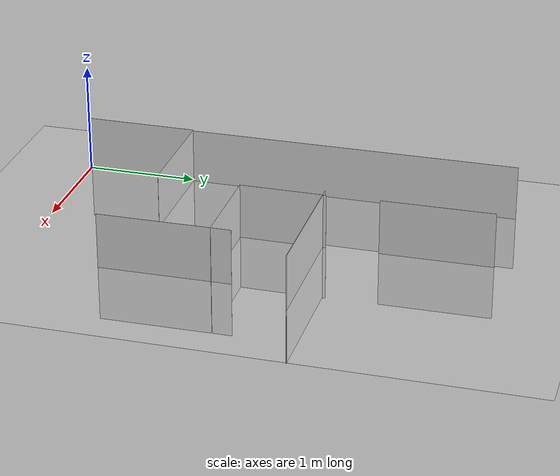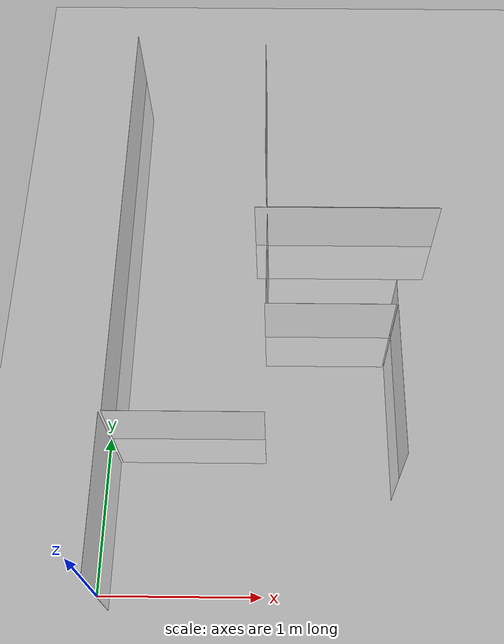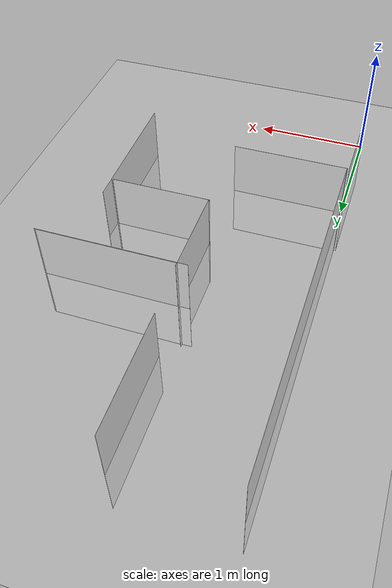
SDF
<sdf version="1.7">
 <world name="default">
  <model name="ground_plane">
   <static>1</static>
   <link name="link">
    <collision name="collision">
     <geometry><plane><normal>0 0 1</normal><size>100 100</size></plane></geometry>
     <surface><friction><ode><mu>100</mu><mu2>50</mu2></ode></friction></surface>
    </collision>
    <visual name="visual">
     <cast_shadows>0</cast_shadows>
     <geometry><plane><normal>0 0 1</normal><size>100 100</size></plane></geometry>
     <material>
      <script><uri>file://media/materials/scripts/gazebo.material</uri><name>Gazebo/Grey</name></script>
     </material>
    </visual>
   </link>
  </model>
  <model name="wall_19">
   <static>1</static>
   <link name="link">
    <collision name="collision"><geometry><box><size>1.27 0.001 1</size></box></geometry></collision>
    <visual name="visual">
     <geometry><box><size>1.27 0.001 1</size></box></geometry>
     <material>
      <script><name>Gazebo/White</name><uri>file://media/materials/scripts/gazebo.material</uri></script>
     </material>
    </visual>
   </link>
   <pose>1.5494 2.48921 0 0 -0 0</pose>
  </model>
  <model name="wall_22">
   <static>1</static>
   <link name="link">
    <collision name="collision"><geometry><box><size>0.1778 0.001 1</size></box></geometry></collision>
    <visual name="visual">
     <geometry><box><size>0.1778 0.001 1</size></box></geometry>
     <material>
      <script><name>Gazebo/White</name><uri>file://media/materials/scripts/gazebo.material</uri></script>
     </material>
    </visual>
   </link>
   <pose>1.8542 1.8415 0 0 0 -1.5708</pose>
  </model>
  <model name="wall_0">
   <link name="link">
    <inertial>
     <mass>1</mass>
     <inertia><ixx>1</ixx><ixy>0</ixy><ixz>0</ixz><iyy>1</iyy><iyz>0</iyz><izz>1</izz></inertia>
    </inertial>
    <visual name="visual">
     <geometry><box><size>3 0.001 1</size></box></geometry>
     <material>
      <script><name>Gazebo/White</name><uri>file://media/materials/scripts/gazebo.material</uri></script>
      <shader type="pixel"><normal_map>__default__</normal_map></shader>
      <ambient>1 1 1 1</ambient>
      <diffuse>1 1 1 1</diffuse>
      <specular>0 0 0 1</specular>
      <emissive>0 0 0 1</emissive>
     </material>
    </visual>
    <collision name="collision">
     <geometry><box><size>3 0.001 1</size></box></geometry>
     <surface>
      <friction>
       <ode><mu>1</mu><mu2>1</mu2><fdir1>0 0 0</fdir1><slip1>0</slip1><slip2>0</slip2></ode>
       <torsional>
        <coefficient>1</coefficient>
        <patch_radius>0</patch_radius>
        <surface_radius>0</surface_radius>
        <use_patch_radius>1</use_patch_radius>
        <ode><slip>0</slip></ode>
       </torsional>
      </friction>
      <bounce><restitution_coefficient>0</restitution_coefficient><threshold>1e+06</threshold></bounce>
      <contact>
       <collide_without_contact>0</collide_without_contact>
       <collide_without_contact_bitmask>1</collide_without_contact_bitmask>
       <collide_bitmask>1</collide_bitmask>
       <ode>
        <soft_cfm>0</soft_cfm>
        <soft_erp>0.2</soft_erp>
        <kp>1e+13</kp>
        <kd>1</kd>
        <max_vel>0.01</max_vel>
        <min_depth>0</min_depth>
       </ode>
       <bullet>
        <split_impulse>1</split_impulse>
        <split_impulse_penetration_threshold>-0.01</split_impulse_penetration_threshold>
        <soft_cfm>0</soft_cfm>
        <soft_erp>0.2</soft_erp>
        <kp>1e+13</kp>
        <kd>1</kd>
       </bullet>
      </contact>
     </surface>
    </collision>
   </link>
   <static>1</static>
   <pose>0.009337 2.51002 0 0 -0 1.5708</pose>
  </model>
  <model name="wall_24_clone_0_clone_clone_1">
   <link name="link">
    <inertial>
     <mass>1</mass>
     <inertia><ixx>1</ixx><ixy>0</ixy><ixz>0</ixz><iyy>1</iyy><iyz>0</iyz><izz>1</izz></inertia>
    </inertial>
    <visual name="visual">
     <geometry><box><size>1 0.001 1</size></box></geometry>
     <material>
      <script><name>Gazebo/White</name><uri>file://media/materials/scripts/gazebo.material</uri></script>
      <shader type="pixel"><normal_map>__default__</normal_map></shader>
      <ambient>1 1 1 1</ambient>
      <diffuse>1 1 1 1</diffuse>
      <specular>0 0 0 1</specular>
      <emissive>0 0 0 1</emissive>
     </material>
    </visual>
    <collision name="collision">
     <geometry><box><size>1 0.001 1</size></box></geometry>
     <surface>
      <friction>
       <ode><mu>1</mu><mu2>1</mu2><fdir1>0 0 0</fdir1><slip1>0</slip1><slip2>0</slip2></ode>
       <torsional>
        <coefficient>1</coefficient>
        <patch_radius>0</patch_radius>
        <surface_radius>0</surface_radius>
        <use_patch_radius>1</use_patch_radius>
        <ode><slip>0</slip></ode>
       </torsional>
      </friction>
      <bounce><restitution_coefficient>0</restitution_coefficient><threshold>1e+06</threshold></bounce>
      <contact>
       <collide_without_contact>0</collide_without_contact>
       <collide_without_contact_bitmask>1</collide_without_contact_bitmask>
       <collide_bitmask>1</collide_bitmask>
       <ode>
        <soft_cfm>0</soft_cfm>
        <soft_erp>0.2</soft_erp>
        <kp>1e+13</kp>
        <kd>1</kd>
        <max_vel>0.01</max_vel>
        <min_depth>0</min_depth>
       </ode>
       <bullet>
        <split_impulse>1</split_impulse>
        <split_impulse_penetration_threshold>-0.01</split_impulse_penetration_threshold>
        <soft_cfm>0</soft_cfm>
        <soft_erp>0.2</soft_erp>
        <kp>1e+13</kp>
        <kd>1</kd>
       </bullet>
      </contact>
     </surface>
    </collision>
   </link>
   <static>1</static>
   <pose>-0.010166 0.501025 0 0 -0 1.56928</pose>
  </model>
  <model name="wall_24_clone_0_clone_0">
   <link name="link">
    <inertial>
     <mass>1</mass>
     <inertia><ixx>1</ixx><ixy>0</ixy><ixz>0</ixz><iyy>1</iyy><iyz>0</iyz><izz>1</izz></inertia>
    </inertial>
    <visual name="visual">
     <geometry><box><size>1 0.001 1</size></box></geometry>
     <material>
      <script><name>Gazebo/White</name><uri>file://media/materials/scripts/gazebo.material</uri></script>
      <shader type="pixel"><normal_map>__default__</normal_map></shader>
      <ambient>1 1 1 1</ambient>
      <diffuse>1 1 1 1</diffuse>
      <specular>0 0 0 1</specular>
      <emissive>0 0 0 1</emissive>
     </material>
    </visual>
    <collision name="collision">
     <geometry><box><size>1 0.001 1</size></box></geometry>
     <surface>
      <friction>
       <ode><mu>1</mu><mu2>1</mu2><fdir1>0 0 0</fdir1><slip1>0</slip1><slip2>0</slip2></ode>
       <torsional>
        <coefficient>1</coefficient>
        <patch_radius>0</patch_radius>
        <surface_radius>0</surface_radius>
        <use_patch_radius>1</use_patch_radius>
        <ode><slip>0</slip></ode>
       </torsional>
      </friction>
      <bounce><restitution_coefficient>0</restitution_coefficient><threshold>1e+06</threshold></bounce>
      <contact>
       <collide_without_contact>0</collide_without_contact>
       <collide_without_contact_bitmask>1</collide_without_contact_bitmask>
       <collide_bitmask>1</collide_bitmask>
       <ode>
        <soft_cfm>0</soft_cfm>
        <soft_erp>0.2</soft_erp>
        <kp>1e+13</kp>
        <kd>1</kd>
        <max_vel>0.01</max_vel>
        <min_depth>0</min_depth>
       </ode>
       <bullet>
        <split_impulse>1</split_impulse>
        <split_impulse_penetration_threshold>-0.01</split_impulse_penetration_threshold>
        <soft_cfm>0</soft_cfm>
        <soft_erp>0.2</soft_erp>
        <kp>1e+13</kp>
        <kd>1</kd>
       </bullet>
      </contact>
     </surface>
    </collision>
   </link>
   <static>1</static>
   <pose>0.975549 3.48714 0 0 -0 1.58109</pose>
  </model>
  <model name="wall_24_clone_0_clone_1">
   <link name="link">
    <inertial>
     <mass>1</mass>
     <inertia><ixx>1</ixx><ixy>0</ixy><ixz>0</ixz><iyy>1</iyy><iyz>0</iyz><izz>1</izz></inertia>
    </inertial>
    <visual name="visual">
     <geometry><box><size>1 0.001 1</size></box></geometry>
     <material>
      <script><name>Gazebo/White</name><uri>file://media/materials/scripts/gazebo.material</uri></script>
      <shader type="pixel"><normal_map>__default__</normal_map></shader>
      <ambient>1 1 1 1</ambient>
      <diffuse>1 1 1 1</diffuse>
      <specular>0 0 0 1</specular>
      <emissive>0 0 0 1</emissive>
     </material>
    </visual>
    <collision name="collision">
     <geometry><box><size>1 0.001 1</size></box></geometry>
     <surface>
      <friction>
       <ode><mu>1</mu><mu2>1</mu2><fdir1>0 0 0</fdir1><slip1>0</slip1><slip2>0</slip2></ode>
       <torsional>
        <coefficient>1</coefficient>
        <patch_radius>0</patch_radius>
        <surface_radius>0</surface_radius>
        <use_patch_radius>1</use_patch_radius>
        <ode><slip>0</slip></ode>
       </torsional>
      </friction>
      <bounce><restitution_coefficient>0</restitution_coefficient><threshold>1e+06</threshold></bounce>
      <contact>
       <collide_without_contact>0</collide_without_contact>
       <collide_without_contact_bitmask>1</collide_without_contact_bitmask>
       <collide_bitmask>1</collide_bitmask>
       <ode>
        <soft_cfm>0</soft_cfm>
        <soft_erp>0.2</soft_erp>
        <kp>1e+13</kp>
        <kd>1</kd>
        <max_vel>0.01</max_vel>
        <min_depth>0</min_depth>
       </ode>
       <bullet>
        <split_impulse>1</split_impulse>
        <split_impulse_penetration_threshold>-0.01</split_impulse_penetration_threshold>
        <soft_cfm>0</soft_cfm>
        <soft_erp>0.2</soft_erp>
        <kp>1e+13</kp>
        <kd>1</kd>
       </bullet>
      </contact>
     </surface>
    </collision>
   </link>
   <static>1</static>
   <pose>0.504864 1.00782 0 0 -0 0</pose>
  </model>
  <model name="wall_24_clone_0_clone_0_clone">
   <link name="link">
    <inertial>
     <mass>1</mass>
     <inertia><ixx>1</ixx><ixy>0</ixy><ixz>0</ixz><iyy>1</iyy><iyz>0</iyz><izz>1</izz></inertia>
    </inertial>
    <visual name="visual">
     <geometry><box><size>1 0.001 1</size></box></geometry>
     <material>
      <script><name>Gazebo/White</name><uri>file://media/materials/scripts/gazebo.material</uri></script>
      <shader type="pixel"><normal_map>__default__</normal_map></shader>
      <ambient>1 1 1 1</ambient>
      <diffuse>1 1 1 1</diffuse>
      <specular>0 0 0 1</specular>
      <emissive>0 0 0 1</emissive>
     </material>
    </visual>
    <collision name="collision">
     <geometry><box><size>1 0.001 1</size></box></geometry>
     <surface>
      <friction>
       <ode><mu>1</mu><mu2>1</mu2><fdir1>0 0 0</fdir1><slip1>0</slip1><slip2>0</slip2></ode>
       <torsional>
        <coefficient>1</coefficient>
        <patch_radius>0</patch_radius>
        <surface_radius>0</surface_radius>
        <use_patch_radius>1</use_patch_radius>
        <ode><slip>0</slip></ode>
       </torsional>
      </friction>
      <bounce><restitution_coefficient>0</restitution_coefficient><threshold>1e+06</threshold></bounce>
      <contact>
       <collide_without_contact>0</collide_without_contact>
       <collide_without_contact_bitmask>1</collide_without_contact_bitmask>
       <collide_bitmask>1</collide_bitmask>
       <ode>
        <soft_cfm>0</soft_cfm>
        <soft_erp>0.2</soft_erp>
        <kp>1e+13</kp>
        <kd>1</kd>
        <max_vel>0.01</max_vel>
        <min_depth>0</min_depth>
       </ode>
       <bullet>
        <split_impulse>1</split_impulse>
        <split_impulse_penetration_threshold>-0.01</split_impulse_penetration_threshold>
        <soft_cfm>0</soft_cfm>
        <soft_erp>0.2</soft_erp>
        <kp>1e+13</kp>
        <kd>1</kd>
       </bullet>
      </contact>
     </surface>
    </collision>
   </link>
   <static>1</static>
   <pose>1.86089 1.2503 0 0 -0 1.58109</pose>
  </model>
  <model name="wall_23">
   <link name="link">
    <inertial>
     <mass>1</mass>
     <inertia><ixx>1</ixx><ixy>0</ixy><ixz>0</ixz><iyy>1</iyy><iyz>0</iyz><izz>1</izz></inertia>
    </inertial>
    <visual name="visual">
     <geometry><box><size>0.85 0.001 1</size></box></geometry>
     <material>
      <script><name>Gazebo/White</name><uri>file://media/materials/scripts/gazebo.material</uri></script>
      <shader type="pixel"><normal_map>__default__</normal_map></shader>
      <ambient>1 1 1 1</ambient>
      <diffuse>1 1 1 1</diffuse>
      <specular>0 0 0 1</specular>
      <emissive>0 0 0 1</emissive>
     </material>
    </visual>
    <collision name="collision">
     <geometry><box><size>0.85 0.001 1</size></box></geometry>
     <surface>
      <friction>
       <ode><mu>1</mu><mu2>1</mu2><fdir1>0 0 0</fdir1><slip1>0</slip1><slip2>0</slip2></ode>
       <torsional>
        <coefficient>1</coefficient>
        <patch_radius>0</patch_radius>
        <surface_radius>0</surface_radius>
        <use_patch_radius>1</use_patch_radius>
        <ode><slip>0</slip></ode>
       </torsional>
      </friction>
      <bounce><restitution_coefficient>0</restitution_coefficient><threshold>1e+06</threshold></bounce>
      <contact>
       <collide_without_contact>0</collide_without_contact>
       <collide_without_contact_bitmask>1</collide_without_contact_bitmask>
       <collide_bitmask>1</collide_bitmask>
       <ode>
        <soft_cfm>0</soft_cfm>
        <soft_erp>0.2</soft_erp>
        <kp>1e+13</kp>
        <kd>1</kd>
        <max_vel>0.01</max_vel>
        <min_depth>0</min_depth>
       </ode>
       <bullet>
        <split_impulse>1</split_impulse>
        <split_impulse_penetration_threshold>-0.01</split_impulse_penetration_threshold>
        <soft_cfm>0</soft_cfm>
        <soft_erp>0.2</soft_erp>
        <kp>1e+13</kp>
        <kd>1</kd>
       </bullet>
      </contact>
     </surface>
    </collision>
   </link>
   <static>1</static>
   <pose>1.41878 1.7526 0 0 0 -3.14159</pose>
  </model>
  <model name="wall_23_clone">
   <link name="link">
    <inertial>
     <mass>1</mass>
     <inertia><ixx>1</ixx><ixy>0</ixy><ixz>0</ixz><iyy>1</iyy><iyz>0</iyz><izz>1</izz></inertia>
    </inertial>
    <visual name="visual">
     <geometry><box><size>1.17 0.001 1</size></box></geometry>
     <material>
      <script><name>Gazebo/White</name><uri>file://media/materials/scripts/gazebo.material</uri></script>
      <shader type="pixel"><normal_map>__default__</normal_map></shader>
      <ambient>1 1 1 1</ambient>
      <diffuse>1 1 1 1</diffuse>
      <specular>0 0 0 1</specular>
      <emissive>0 0 0 1</emissive>
     </material>
    </visual>
    <collision name="collision">
     <geometry><box><size>1.17 0.001 1</size></box></geometry>
     <surface>
      <friction>
       <ode><mu>1</mu><mu2>1</mu2><fdir1>0 0 0</fdir1><slip1>0</slip1><slip2>0</slip2></ode>
       <torsional>
        <coefficient>1</coefficient>
        <patch_radius>0</patch_radius>
        <surface_radius>0</surface_radius>
        <use_patch_radius>1</use_patch_radius>
        <ode><slip>0</slip></ode>
       </torsional>
      </friction>
      <bounce><restitution_coefficient>0</restitution_coefficient><threshold>1e+06</threshold></bounce>
      <contact>
       <collide_without_contact>0</collide_without_contact>
       <collide_without_contact_bitmask>1</collide_without_contact_bitmask>
       <collide_bitmask>1</collide_bitmask>
       <ode>
        <soft_cfm>0</soft_cfm>
        <soft_erp>0.2</soft_erp>
        <kp>1e+13</kp>
        <kd>1</kd>
        <max_vel>0.01</max_vel>
        <min_depth>0</min_depth>
       </ode>
       <bullet>
        <split_impulse>1</split_impulse>
        <split_impulse_penetration_threshold>-0.01</split_impulse_penetration_threshold>
        <soft_cfm>0</soft_cfm>
        <soft_erp>0.2</soft_erp>
        <kp>1e+13</kp>
        <kd>1</kd>
       </bullet>
      </contact>
     </surface>
    </collision>
   </link>
   <static>1</static>
   <pose>1.58755 2.49347 0 0 0 -3.14159</pose>
  </model>
  <model name="wall_13">
   <link name="link">
    <inertial>
     <mass>1</mass>
     <inertia><ixx>1</ixx><ixy>0</ixy><ixz>0</ixz><iyy>1</iyy><iyz>0</iyz><izz>1</izz></inertia>
    </inertial>
    <visual name="visual">
     <geometry><box><size>0.77 0.001 1</size></box></geometry>
     <material>
      <script><name>Gazebo/White</name><uri>file://media/materials/scripts/gazebo.material</uri></script>
      <shader type="pixel"><normal_map>__default__</normal_map></shader>
      <ambient>1 1 1 1</ambient>
      <diffuse>1 1 1 1</diffuse>
      <specular>0 0 0 1</specular>
      <emissive>0 0 0 1</emissive>
     </material>
    </visual>
    <collision name="collision">
     <geometry><box><size>0.77 0.001 1</size></box></geometry>
     <surface>
      <friction>
       <ode><mu>1</mu><mu2>1</mu2><fdir1>0 0 0</fdir1><slip1>0</slip1><slip2>0</slip2></ode>
       <torsional>
        <coefficient>1</coefficient>
        <patch_radius>0</patch_radius>
        <surface_radius>0</surface_radius>
        <use_patch_radius>1</use_patch_radius>
        <ode><slip>0</slip></ode>
       </torsional>
      </friction>
      <bounce><restitution_coefficient>0</restitution_coefficient><threshold>1e+06</threshold></bounce>
      <contact>
       <collide_without_contact>0</collide_without_contact>
       <collide_without_contact_bitmask>1</collide_without_contact_bitmask>
       <collide_bitmask>1</collide_bitmask>
       <ode>
        <soft_cfm>0</soft_cfm>
        <soft_erp>0.2</soft_erp>
        <kp>1e+13</kp>
        <kd>1</kd>
        <max_vel>0.01</max_vel>
        <min_depth>0</min_depth>
       </ode>
       <bullet>
        <split_impulse>1</split_impulse>
        <split_impulse_penetration_threshold>-0.01</split_impulse_penetration_threshold>
        <soft_cfm>0</soft_cfm>
        <soft_erp>0.2</soft_erp>
        <kp>1e+13</kp>
        <kd>1</kd>
       </bullet>
      </contact>
     </surface>
    </collision>
   </link>
   <static>1</static>
   <pose>1.00072 2.13753 0 0 -0 1.5708</pose>
  </model>
 </world>
</sdf>
